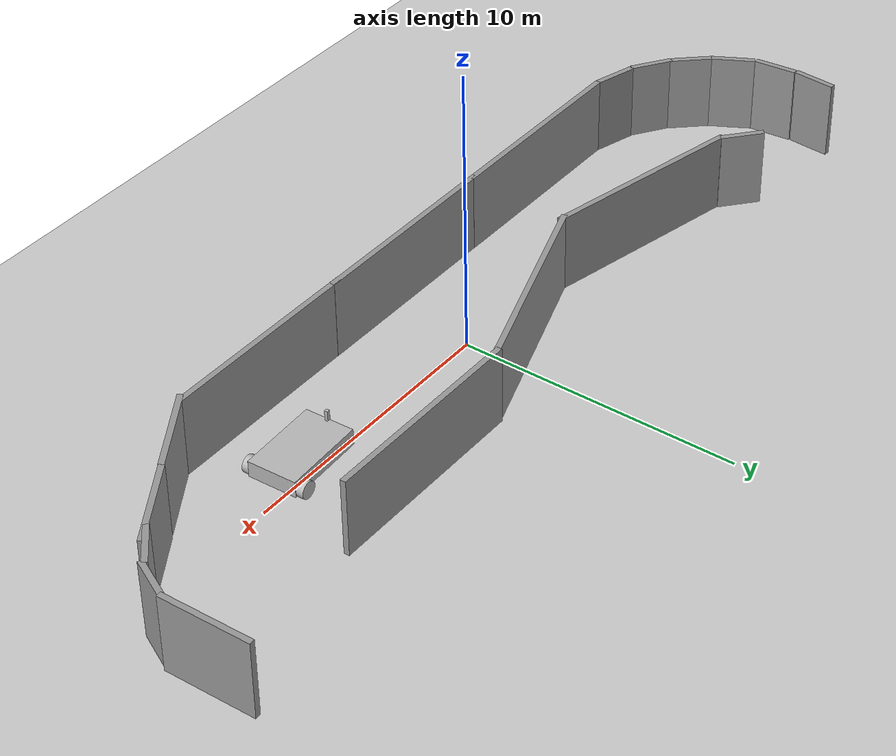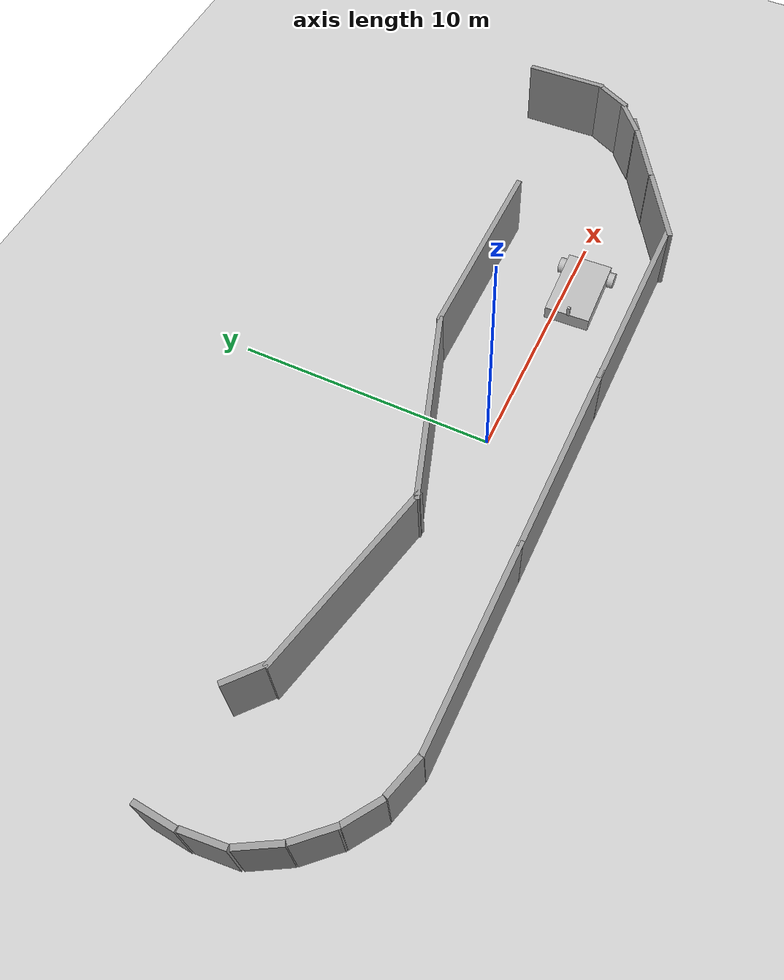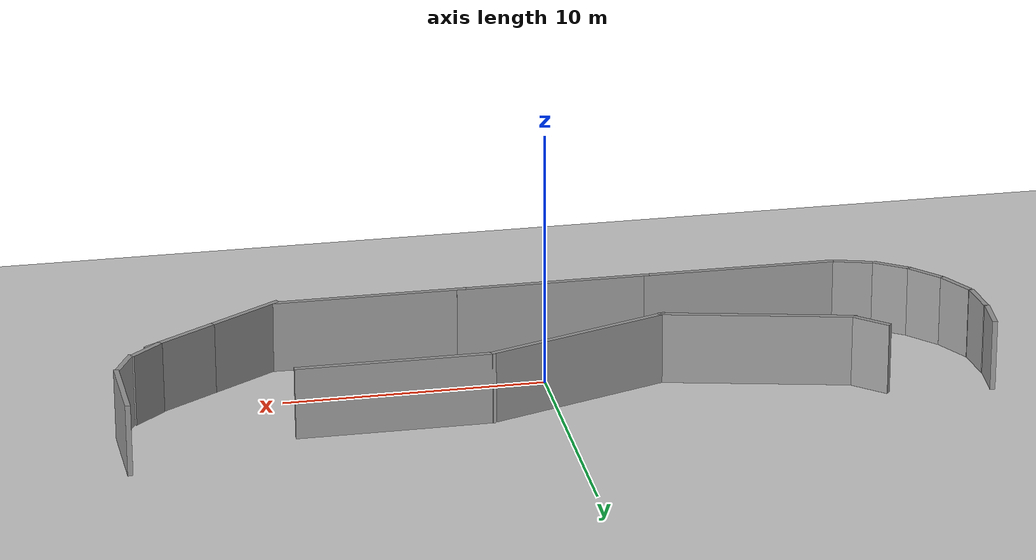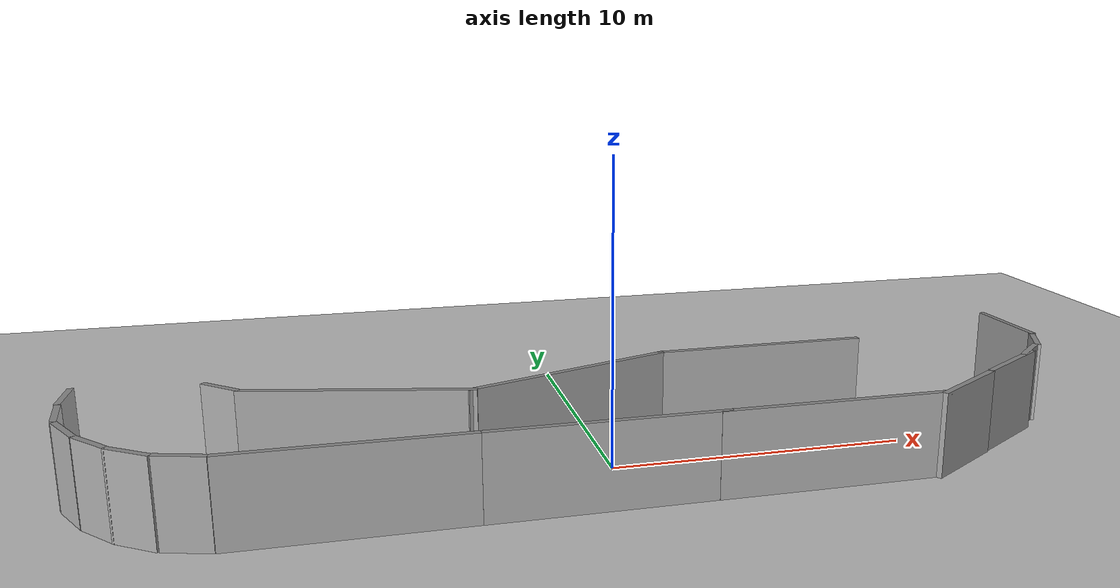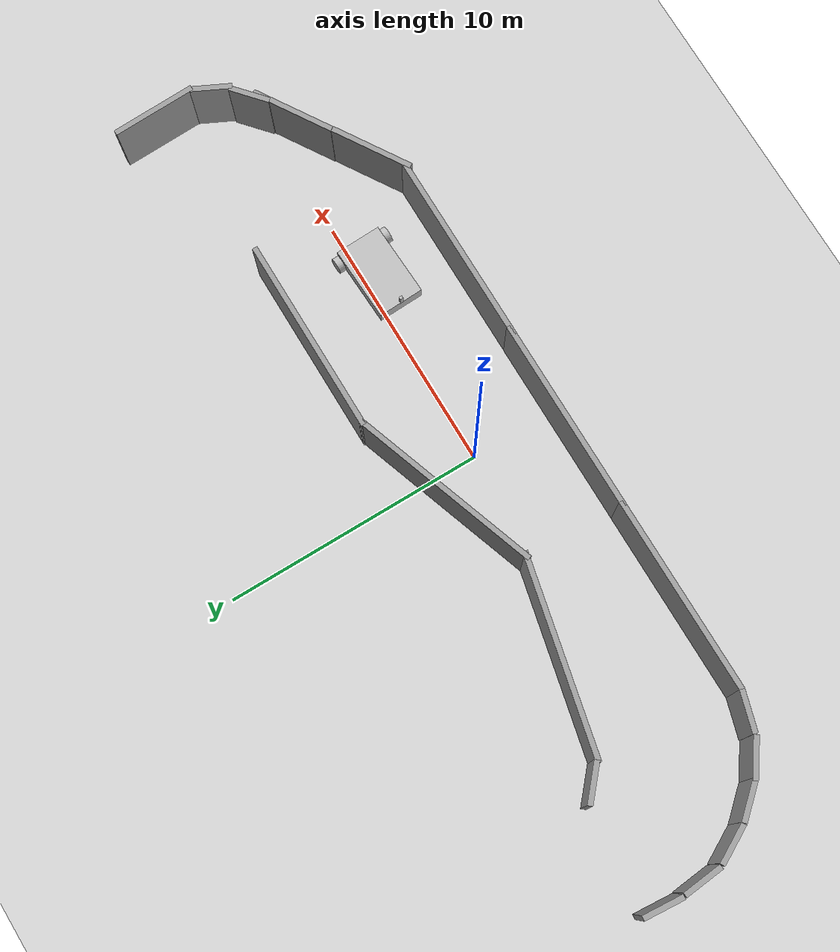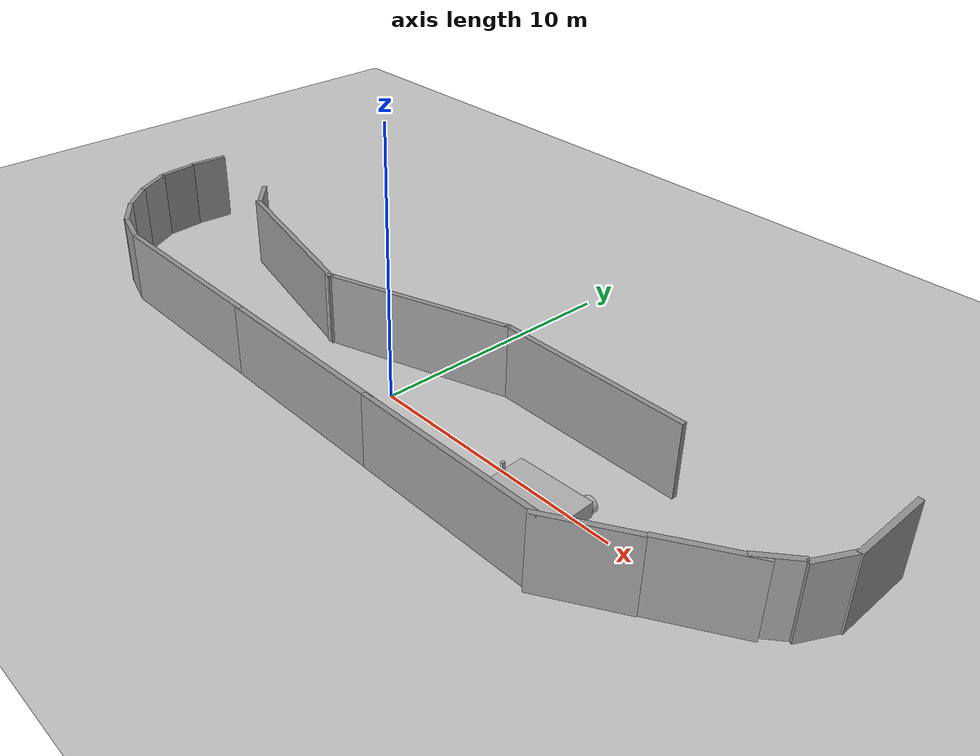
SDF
<sdf version="1.7">
 <world name="default">
  <model name="ground_plane">
   <static>1</static>
   <link name="link">
    <collision name="collision">
     <geometry><plane><normal>0 0 1</normal><size>100 100</size></plane></geometry>
     <surface>
      <contact><collide_bitmask>65535</collide_bitmask></contact>
      <friction><ode><mu>100</mu><mu2>50</mu2></ode></friction>
     </surface>
    </collision>
    <visual name="visual">
     <cast_shadows>0</cast_shadows>
     <geometry><plane><normal>0 0 1</normal><size>100 100</size></plane></geometry>
     <material>
      <script><uri>file://media/materials/scripts/gazebo.material</uri><name>Gazebo/Grey</name></script>
     </material>
    </visual>
   </link>
  </model>
  <model name="grey_wall">
   <static>1</static>
   <link name="link">
    <pose>0 0 1.4 0 -0 0</pose>
    <collision name="collision"><geometry><box><size>7.5 0.2 2.8</size></box></geometry></collision>
    <visual name="visual">
     <cast_shadows>0</cast_shadows>
     <geometry><box><size>7.5 0.2 2.8</size></box></geometry>
     <material>
      <script>
       <uri>model://grey_wall/materials/scripts</uri>
       <uri>model://grey_wall/materials/textures</uri>
       <name>vrc/grey_wall</name>
      </script>
     </material>
    </visual>
   </link>
   <pose>6.24047 -3.07553 0 0 -0 0</pose>
  </model>
  <model name="grey_wall_0">
   <static>1</static>
   <link name="link">
    <pose>0 0 1.4 0 -0 0</pose>
    <collision name="collision"><geometry><box><size>7.5 0.2 2.8</size></box></geometry></collision>
    <visual name="visual">
     <cast_shadows>0</cast_shadows>
     <geometry><box><size>7.5 0.2 2.8</size></box></geometry>
     <material>
      <script>
       <uri>model://grey_wall/materials/scripts</uri>
       <uri>model://grey_wall/materials/textures</uri>
       <name>vrc/grey_wall</name>
      </script>
     </material>
    </visual>
   </link>
   <pose>6.195 3.06427 0 0 -0 0</pose>
  </model>
  <model name="grey_wall_1">
   <static>1</static>
   <link name="link">
    <pose>0 0 1.4 0 -0 0</pose>
    <collision name="collision"><geometry><box><size>7.5 0.2 2.8</size></box></geometry></collision>
    <visual name="visual">
     <cast_shadows>0</cast_shadows>
     <geometry><box><size>7.5 0.2 2.8</size></box></geometry>
     <material>
      <script>
       <uri>model://grey_wall/materials/scripts</uri>
       <uri>model://grey_wall/materials/textures</uri>
       <name>vrc/grey_wall</name>
      </script>
     </material>
    </visual>
   </link>
   <pose>-0.883506 -3.06915 0 0 -0 0</pose>
  </model>
  <model name="grey_wall_2">
   <static>1</static>
   <link name="link">
    <pose>0 0 1.4 0 -0 0</pose>
    <collision name="collision"><geometry><box><size>7.5 0.2 2.8</size></box></geometry></collision>
    <visual name="visual">
     <cast_shadows>0</cast_shadows>
     <geometry><box><size>7.5 0.2 2.8</size></box></geometry>
     <material>
      <script>
       <uri>model://grey_wall/materials/scripts</uri>
       <uri>model://grey_wall/materials/textures</uri>
       <name>vrc/grey_wall</name>
      </script>
     </material>
    </visual>
   </link>
   <pose>-0.930243 1.86057 0 0 -0 0.330047</pose>
  </model>
  <model name="grey_wall_3">
   <static>1</static>
   <link name="link">
    <pose>0 0 1.4 0 -0 0</pose>
    <collision name="collision"><geometry><box><size>7.5 0.2 2.8</size></box></geometry></collision>
    <visual name="visual">
     <cast_shadows>0</cast_shadows>
     <geometry><box><size>7.5 0.2 2.8</size></box></geometry>
     <material>
      <script>
       <uri>model://grey_wall/materials/scripts</uri>
       <uri>model://grey_wall/materials/textures</uri>
       <name>vrc/grey_wall</name>
      </script>
     </material>
    </visual>
   </link>
   <pose>-8.16793 -3.06567 0 0 -0 0</pose>
  </model>
  <model name="grey_wall_4">
   <static>1</static>
   <link name="link">
    <pose>0 0 1.4 0 -0 0</pose>
    <collision name="collision"><geometry><box><size>7.5 0.2 2.8</size></box></geometry></collision>
    <visual name="visual">
     <cast_shadows>0</cast_shadows>
     <geometry><box><size>7.5 0.2 2.8</size></box></geometry>
     <material>
      <script>
       <uri>model://grey_wall/materials/scripts</uri>
       <uri>model://grey_wall/materials/textures</uri>
       <name>vrc/grey_wall</name>
      </script>
     </material>
    </visual>
   </link>
   <pose>-7.83293 1.48595 0 0 0 -0.222426</pose>
  </model>
  <model name="grey_wall_small">
   <link name="link">
    <pose>0 0 1.4 0 -0 0</pose>
    <inertial>
     <inertia><ixx>0</ixx><ixy>0</ixy><ixz>0</ixz><iyy>0</iyy><iyz>0</iyz><izz>0</izz></inertia>
     <mass>0</mass>
    </inertial>
    <visual name="visual">
     <cast_shadows>0</cast_shadows>
     <geometry><box><size>1.53178 0.2 2.8</size></box></geometry>
     <material>
      <script>
       <uri>model://grey_wall/materials/scripts</uri>
       <uri>model://grey_wall/materials/textures</uri>
       <name>vrc/grey_wall</name>
      </script>
      <shader type="pixel"/>
     </material>
    </visual>
    <collision name="collision">
     <geometry><box><size>1.53178 0.2 2.8</size></box></geometry>
     <surface>
      <friction>
       <ode><mu>1</mu><mu2>1</mu2><fdir1>0 0 0</fdir1><slip1>0</slip1><slip2>0</slip2></ode>
       <torsional>
        <coefficient>1</coefficient>
        <patch_radius>0</patch_radius>
        <surface_radius>0</surface_radius>
        <use_patch_radius>1</use_patch_radius>
        <ode><slip>0</slip></ode>
       </torsional>
      </friction>
      <bounce><restitution_coefficient>0</restitution_coefficient><threshold>1e+06</threshold></bounce>
      <contact>
       <collide_without_contact>0</collide_without_contact>
       <collide_without_contact_bitmask>1</collide_without_contact_bitmask>
       <collide_bitmask>1</collide_bitmask>
       <ode>
        <soft_cfm>0</soft_cfm>
        <soft_erp>0.2</soft_erp>
        <kp>1e+13</kp>
        <kd>1</kd>
        <max_vel>0.01</max_vel>
        <min_depth>0</min_depth>
       </ode>
       <bullet>
        <split_impulse>1</split_impulse>
        <split_impulse_penetration_threshold>-0.01</split_impulse_penetration_threshold>
        <soft_cfm>0</soft_cfm>
        <soft_erp>0.2</soft_erp>
        <kp>1e+13</kp>
        <kd>1</kd>
       </bullet>
      </contact>
     </surface>
    </collision>
   </link>
   <static>1</static>
   <pose>-12.6395 -2.84604 -0 0 0 -0.284404</pose>
  </model>
  <model name="grey_wall_small_clone">
   <link name="link">
    <pose>0 0 1.4 0 -0 0</pose>
    <inertial>
     <inertia><ixx>0</ixx><ixy>0</ixy><ixz>0</ixz><iyy>0</iyy><iyz>0</iyz><izz>0</izz></inertia>
     <mass>0</mass>
    </inertial>
    <visual name="visual">
     <cast_shadows>0</cast_shadows>
     <geometry><box><size>1.53178 0.2 2.8</size></box></geometry>
     <material>
      <script>
       <uri>model://grey_wall/materials/scripts</uri>
       <uri>model://grey_wall/materials/textures</uri>
       <name>vrc/grey_wall</name>
      </script>
      <shader type="pixel"/>
     </material>
    </visual>
    <collision name="collision">
     <geometry><box><size>1.53178 0.2 2.8</size></box></geometry>
     <surface>
      <friction>
       <ode><mu>1</mu><mu2>1</mu2><fdir1>0 0 0</fdir1><slip1>0</slip1><slip2>0</slip2></ode>
       <torsional>
        <coefficient>1</coefficient>
        <patch_radius>0</patch_radius>
        <surface_radius>0</surface_radius>
        <use_patch_radius>1</use_patch_radius>
        <ode><slip>0</slip></ode>
       </torsional>
      </friction>
      <bounce><restitution_coefficient>0</restitution_coefficient><threshold>1e+06</threshold></bounce>
      <contact>
       <collide_without_contact>0</collide_without_contact>
       <collide_without_contact_bitmask>1</collide_without_contact_bitmask>
       <collide_bitmask>1</collide_bitmask>
       <ode>
        <soft_cfm>0</soft_cfm>
        <soft_erp>0.2</soft_erp>
        <kp>1e+13</kp>
        <kd>1</kd>
        <max_vel>0.01</max_vel>
        <min_depth>0</min_depth>
       </ode>
       <bullet>
        <split_impulse>1</split_impulse>
        <split_impulse_penetration_threshold>-0.01</split_impulse_penetration_threshold>
        <soft_cfm>0</soft_cfm>
        <soft_erp>0.2</soft_erp>
        <kp>1e+13</kp>
        <kd>1</kd>
       </bullet>
      </contact>
     </surface>
    </collision>
   </link>
   <static>1</static>
   <pose>-11.9422 2.81874 0 0 0 -0.719521</pose>
  </model>
  <model name="grey_wall_small_0">
   <link name="link">
    <pose>0 0 1.4 0 -0 0</pose>
    <inertial>
     <inertia><ixx>0</ixx><ixy>0</ixy><ixz>0</ixz><iyy>0</iyy><iyz>0</iyz><izz>0</izz></inertia>
     <mass>0</mass>
    </inertial>
    <visual name="visual">
     <cast_shadows>0</cast_shadows>
     <geometry><box><size>1.53178 0.2 2.8</size></box></geometry>
     <material>
      <script>
       <uri>model://grey_wall/materials/scripts</uri>
       <uri>model://grey_wall/materials/textures</uri>
       <name>vrc/grey_wall</name>
      </script>
      <shader type="pixel"/>
     </material>
    </visual>
    <collision name="collision">
     <geometry><box><size>1.53178 0.2 2.8</size></box></geometry>
     <surface>
      <friction>
       <ode><mu>1</mu><mu2>1</mu2><fdir1>0 0 0</fdir1><slip1>0</slip1><slip2>0</slip2></ode>
       <torsional>
        <coefficient>1</coefficient>
        <patch_radius>0</patch_radius>
        <surface_radius>0</surface_radius>
        <use_patch_radius>1</use_patch_radius>
        <ode><slip>0</slip></ode>
       </torsional>
      </friction>
      <bounce><restitution_coefficient>0</restitution_coefficient><threshold>1e+06</threshold></bounce>
      <contact>
       <collide_without_contact>0</collide_without_contact>
       <collide_without_contact_bitmask>1</collide_without_contact_bitmask>
       <collide_bitmask>1</collide_bitmask>
       <ode>
        <soft_cfm>0</soft_cfm>
        <soft_erp>0.2</soft_erp>
        <kp>1e+13</kp>
        <kd>1</kd>
        <max_vel>0.01</max_vel>
        <min_depth>0</min_depth>
       </ode>
       <bullet>
        <split_impulse>1</split_impulse>
        <split_impulse_penetration_threshold>-0.01</split_impulse_penetration_threshold>
        <soft_cfm>0</soft_cfm>
        <soft_erp>0.2</soft_erp>
        <kp>1e+13</kp>
        <kd>1</kd>
       </bullet>
      </contact>
     </surface>
    </collision>
   </link>
   <static>1</static>
   <pose>-14.0325 -2.21425 0 0 0 -0.600476</pose>
  </model>
  <model name="grey_wall_small_1">
   <link name="link">
    <pose>0 0 1.4 0 -0 0</pose>
    <inertial>
     <inertia><ixx>0</ixx><ixy>0</ixy><ixz>0</ixz><iyy>0</iyy><iyz>0</iyz><izz>0</izz></inertia>
     <mass>0</mass>
    </inertial>
    <visual name="visual">
     <cast_shadows>0</cast_shadows>
     <geometry><box><size>1.53178 0.2 2.8</size></box></geometry>
     <material>
      <script>
       <uri>model://grey_wall/materials/scripts</uri>
       <uri>model://grey_wall/materials/textures</uri>
       <name>vrc/grey_wall</name>
      </script>
      <shader type="pixel"/>
     </material>
    </visual>
    <collision name="collision">
     <geometry><box><size>1.53178 0.2 2.8</size></box></geometry>
     <surface>
      <friction>
       <ode><mu>1</mu><mu2>1</mu2><fdir1>0 0 0</fdir1><slip1>0</slip1><slip2>0</slip2></ode>
       <torsional>
        <coefficient>1</coefficient>
        <patch_radius>0</patch_radius>
        <surface_radius>0</surface_radius>
        <use_patch_radius>1</use_patch_radius>
        <ode><slip>0</slip></ode>
       </torsional>
      </friction>
      <bounce><restitution_coefficient>0</restitution_coefficient><threshold>1e+06</threshold></bounce>
      <contact>
       <collide_without_contact>0</collide_without_contact>
       <collide_without_contact_bitmask>1</collide_without_contact_bitmask>
       <collide_bitmask>1</collide_bitmask>
       <ode>
        <soft_cfm>0</soft_cfm>
        <soft_erp>0.2</soft_erp>
        <kp>1e+13</kp>
        <kd>1</kd>
        <max_vel>0.01</max_vel>
        <min_depth>0</min_depth>
       </ode>
       <bullet>
        <split_impulse>1</split_impulse>
        <split_impulse_penetration_threshold>-0.01</split_impulse_penetration_threshold>
        <soft_cfm>0</soft_cfm>
        <soft_erp>0.2</soft_erp>
        <kp>1e+13</kp>
        <kd>1</kd>
       </bullet>
      </contact>
     </surface>
    </collision>
   </link>
   <static>1</static>
   <pose>-15.1007 -1.27585 0 0 0 -0.833322</pose>
  </model>
  <model name="grey_wall_small_2">
   <link name="link">
    <pose>0 0 1.4 0 -0 0</pose>
    <inertial>
     <inertia><ixx>0</ixx><ixy>0</ixy><ixz>0</ixz><iyy>0</iyy><iyz>0</iyz><izz>0</izz></inertia>
     <mass>0</mass>
    </inertial>
    <visual name="visual">
     <cast_shadows>0</cast_shadows>
     <geometry><box><size>1.53178 0.2 2.8</size></box></geometry>
     <material>
      <script>
       <uri>model://grey_wall/materials/scripts</uri>
       <uri>model://grey_wall/materials/textures</uri>
       <name>vrc/grey_wall</name>
      </script>
      <shader type="pixel"/>
     </material>
    </visual>
    <collision name="collision">
     <geometry><box><size>1.53178 0.2 2.8</size></box></geometry>
     <surface>
      <friction>
       <ode><mu>1</mu><mu2>1</mu2><fdir1>0 0 0</fdir1><slip1>0</slip1><slip2>0</slip2></ode>
       <torsional>
        <coefficient>1</coefficient>
        <patch_radius>0</patch_radius>
        <surface_radius>0</surface_radius>
        <use_patch_radius>1</use_patch_radius>
        <ode><slip>0</slip></ode>
       </torsional>
      </friction>
      <bounce><restitution_coefficient>0</restitution_coefficient><threshold>1e+06</threshold></bounce>
      <contact>
       <collide_without_contact>0</collide_without_contact>
       <collide_without_contact_bitmask>1</collide_without_contact_bitmask>
       <collide_bitmask>1</collide_bitmask>
       <ode>
        <soft_cfm>0</soft_cfm>
        <soft_erp>0.2</soft_erp>
        <kp>1e+13</kp>
        <kd>1</kd>
        <max_vel>0.01</max_vel>
        <min_depth>0</min_depth>
       </ode>
       <bullet>
        <split_impulse>1</split_impulse>
        <split_impulse_penetration_threshold>-0.01</split_impulse_penetration_threshold>
        <soft_cfm>0</soft_cfm>
        <soft_erp>0.2</soft_erp>
        <kp>1e+13</kp>
        <kd>1</kd>
       </bullet>
      </contact>
     </surface>
    </collision>
   </link>
   <static>1</static>
   <pose>-15.9987 -0.025805 0 0 0 -1.06472</pose>
  </model>
  <model name="grey_wall_small_3">
   <link name="link">
    <pose>0 0 1.4 0 -0 0</pose>
    <inertial>
     <inertia><ixx>0</ixx><ixy>0</ixy><ixz>0</ixz><iyy>0</iyy><iyz>0</iyz><izz>0</izz></inertia>
     <mass>0</mass>
    </inertial>
    <visual name="visual">
     <cast_shadows>0</cast_shadows>
     <geometry><box><size>1.53178 0.2 2.8</size></box></geometry>
     <material>
      <script>
       <uri>model://grey_wall/materials/scripts</uri>
       <uri>model://grey_wall/materials/textures</uri>
       <name>vrc/grey_wall</name>
      </script>
      <shader type="pixel"/>
     </material>
    </visual>
    <collision name="collision">
     <geometry><box><size>1.53178 0.2 2.8</size></box></geometry>
     <surface>
      <friction>
       <ode><mu>1</mu><mu2>1</mu2><fdir1>0 0 0</fdir1><slip1>0</slip1><slip2>0</slip2></ode>
       <torsional>
        <coefficient>1</coefficient>
        <patch_radius>0</patch_radius>
        <surface_radius>0</surface_radius>
        <use_patch_radius>1</use_patch_radius>
        <ode><slip>0</slip></ode>
       </torsional>
      </friction>
      <bounce><restitution_coefficient>0</restitution_coefficient><threshold>1e+06</threshold></bounce>
      <contact>
       <collide_without_contact>0</collide_without_contact>
       <collide_without_contact_bitmask>1</collide_without_contact_bitmask>
       <collide_bitmask>1</collide_bitmask>
       <ode>
        <soft_cfm>0</soft_cfm>
        <soft_erp>0.2</soft_erp>
        <kp>1e+13</kp>
        <kd>1</kd>
        <max_vel>0.01</max_vel>
        <min_depth>0</min_depth>
       </ode>
       <bullet>
        <split_impulse>1</split_impulse>
        <split_impulse_penetration_threshold>-0.01</split_impulse_penetration_threshold>
        <soft_cfm>0</soft_cfm>
        <soft_erp>0.2</soft_erp>
        <kp>1e+13</kp>
        <kd>1</kd>
       </bullet>
      </contact>
     </surface>
    </collision>
   </link>
   <static>1</static>
   <pose>-16.4715 1.44928 -0 0 0 -1.4736</pose>
  </model>
  <model name="grey_wall_small_5">
   <link name="link">
    <pose>0 0 1.4 0 -0 0</pose>
    <inertial>
     <inertia><ixx>0</ixx><ixy>0</ixy><ixz>0</ixz><iyy>0</iyy><iyz>0</iyz><izz>0</izz></inertia>
     <mass>0</mass>
    </inertial>
    <visual name="visual">
     <cast_shadows>0</cast_shadows>
     <geometry><box><size>1.53178 0.2 2.8</size></box></geometry>
     <material>
      <script>
       <uri>model://grey_wall/materials/scripts</uri>
       <uri>model://grey_wall/materials/textures</uri>
       <name>vrc/grey_wall</name>
      </script>
      <shader type="pixel"/>
     </material>
    </visual>
    <collision name="collision">
     <geometry><box><size>1.53178 0.2 2.8</size></box></geometry>
     <surface>
      <friction>
       <ode><mu>1</mu><mu2>1</mu2><fdir1>0 0 0</fdir1><slip1>0</slip1><slip2>0</slip2></ode>
       <torsional>
        <coefficient>1</coefficient>
        <patch_radius>0</patch_radius>
        <surface_radius>0</surface_radius>
        <use_patch_radius>1</use_patch_radius>
        <ode><slip>0</slip></ode>
       </torsional>
      </friction>
      <bounce><restitution_coefficient>0</restitution_coefficient><threshold>1e+06</threshold></bounce>
      <contact>
       <collide_without_contact>0</collide_without_contact>
       <collide_without_contact_bitmask>1</collide_without_contact_bitmask>
       <collide_bitmask>1</collide_bitmask>
       <ode>
        <soft_cfm>0</soft_cfm>
        <soft_erp>0.2</soft_erp>
        <kp>1e+13</kp>
        <kd>1</kd>
        <max_vel>0.01</max_vel>
        <min_depth>0</min_depth>
       </ode>
       <bullet>
        <split_impulse>1</split_impulse>
        <split_impulse_penetration_threshold>-0.01</split_impulse_penetration_threshold>
        <soft_cfm>0</soft_cfm>
        <soft_erp>0.2</soft_erp>
        <kp>1e+13</kp>
        <kd>1</kd>
       </bullet>
      </contact>
     </surface>
    </collision>
   </link>
   <static>1</static>
   <pose>-16.5119 3.01367 0 0 0 -1.64804</pose>
  </model>
  <model name="grey_wall_medium">
   <link name="link">
    <pose>0 -0 1.4 -0 -0 -0</pose>
    <inertial>
     <inertia><ixx>0</ixx><ixy>0</ixy><ixz>0</ixz><iyy>0</iyy><iyz>0</iyz><izz>0</izz></inertia>
     <mass>0</mass>
    </inertial>
    <visual name="visual">
     <cast_shadows>0</cast_shadows>
     <geometry><box><size>3.18298 0.2 2.8</size></box></geometry>
     <material>
      <script>
       <uri>model://grey_wall/materials/scripts</uri>
       <uri>model://grey_wall/materials/textures</uri>
       <name>vrc/grey_wall</name>
      </script>
      <shader type="pixel"/>
     </material>
    </visual>
    <collision name="collision">
     <geometry><box><size>3.18298 0.2 2.8</size></box></geometry>
     <surface>
      <friction>
       <ode><mu>1</mu><mu2>1</mu2><fdir1>0 0 0</fdir1><slip1>0</slip1><slip2>0</slip2></ode>
       <torsional>
        <coefficient>1</coefficient>
        <patch_radius>0</patch_radius>
        <surface_radius>0</surface_radius>
        <use_patch_radius>1</use_patch_radius>
        <ode><slip>0</slip></ode>
       </torsional>
      </friction>
      <bounce><restitution_coefficient>0</restitution_coefficient><threshold>1e+06</threshold></bounce>
      <contact>
       <collide_without_contact>0</collide_without_contact>
       <collide_without_contact_bitmask>1</collide_without_contact_bitmask>
       <collide_bitmask>1</collide_bitmask>
       <ode>
        <soft_cfm>0</soft_cfm>
        <soft_erp>0.2</soft_erp>
        <kp>1e+13</kp>
        <kd>1</kd>
        <max_vel>0.01</max_vel>
        <min_depth>0</min_depth>
       </ode>
       <bullet>
        <split_impulse>1</split_impulse>
        <split_impulse_penetration_threshold>-0.01</split_impulse_penetration_threshold>
        <soft_cfm>0</soft_cfm>
        <soft_erp>0.2</soft_erp>
        <kp>1e+13</kp>
        <kd>1</kd>
       </bullet>
      </contact>
     </surface>
    </collision>
   </link>
   <static>1</static>
   <pose>16.3164 3.53392 -0 0 -0.007518 -1.53946</pose>
  </model>
  <model name="grey_wall_medium_clone">
   <link name="link">
    <pose>0 -0 1.4 -0 -0 -0</pose>
    <inertial>
     <inertia><ixx>0</ixx><ixy>0</ixy><ixz>0</ixz><iyy>0</iyy><iyz>0</iyz><izz>0</izz></inertia>
     <mass>0</mass>
    </inertial>
    <visual name="visual">
     <cast_shadows>0</cast_shadows>
     <geometry><box><size>3.18298 0.2 2.8</size></box></geometry>
     <material>
      <script>
       <uri>model://grey_wall/materials/scripts</uri>
       <uri>model://grey_wall/materials/textures</uri>
       <name>vrc/grey_wall</name>
      </script>
      <shader type="pixel"/>
     </material>
    </visual>
    <collision name="collision">
     <geometry><box><size>3.18298 0.2 2.8</size></box></geometry>
     <surface>
      <friction>
       <ode><mu>1</mu><mu2>1</mu2><fdir1>0 0 0</fdir1><slip1>0</slip1><slip2>0</slip2></ode>
       <torsional>
        <coefficient>1</coefficient>
        <patch_radius>0</patch_radius>
        <surface_radius>0</surface_radius>
        <use_patch_radius>1</use_patch_radius>
        <ode><slip>0</slip></ode>
       </torsional>
      </friction>
      <bounce><restitution_coefficient>0</restitution_coefficient><threshold>1e+06</threshold></bounce>
      <contact>
       <collide_without_contact>0</collide_without_contact>
       <collide_without_contact_bitmask>1</collide_without_contact_bitmask>
       <collide_bitmask>1</collide_bitmask>
       <ode>
        <soft_cfm>0</soft_cfm>
        <soft_erp>0.2</soft_erp>
        <kp>1e+13</kp>
        <kd>1</kd>
        <max_vel>0.01</max_vel>
        <min_depth>0</min_depth>
       </ode>
       <bullet>
        <split_impulse>1</split_impulse>
        <split_impulse_penetration_threshold>-0.01</split_impulse_penetration_threshold>
        <soft_cfm>0</soft_cfm>
        <soft_erp>0.2</soft_erp>
        <kp>1e+13</kp>
        <kd>1</kd>
       </bullet>
      </contact>
     </surface>
    </collision>
   </link>
   <static>1</static>
   <pose>11.067 -2.40478 -0 0.0065 -0.003778 -2.58367</pose>
  </model>
  <model name="grey_wall_medium_clone_clone">
   <link name="link">
    <pose>0 -0 1.4 -0 -0 -0</pose>
    <inertial>
     <inertia><ixx>0</ixx><ixy>0</ixy><ixz>0</ixz><iyy>0</iyy><iyz>0</iyz><izz>0</izz></inertia>
     <mass>0</mass>
    </inertial>
    <visual name="visual">
     <cast_shadows>0</cast_shadows>
     <geometry><box><size>3.18298 0.2 2.8</size></box></geometry>
     <material>
      <script>
       <uri>model://grey_wall/materials/scripts</uri>
       <uri>model://grey_wall/materials/textures</uri>
       <name>vrc/grey_wall</name>
      </script>
      <shader type="pixel"/>
     </material>
    </visual>
    <collision name="collision">
     <geometry><box><size>3.18298 0.2 2.8</size></box></geometry>
     <surface>
      <friction>
       <ode><mu>1</mu><mu2>1</mu2><fdir1>0 0 0</fdir1><slip1>0</slip1><slip2>0</slip2></ode>
       <torsional>
        <coefficient>1</coefficient>
        <patch_radius>0</patch_radius>
        <surface_radius>0</surface_radius>
        <use_patch_radius>1</use_patch_radius>
        <ode><slip>0</slip></ode>
       </torsional>
      </friction>
      <bounce><restitution_coefficient>0</restitution_coefficient><threshold>1e+06</threshold></bounce>
      <contact>
       <collide_without_contact>0</collide_without_contact>
       <collide_without_contact_bitmask>1</collide_without_contact_bitmask>
       <collide_bitmask>1</collide_bitmask>
       <ode>
        <soft_cfm>0</soft_cfm>
        <soft_erp>0.2</soft_erp>
        <kp>1e+13</kp>
        <kd>1</kd>
        <max_vel>0.01</max_vel>
        <min_depth>0</min_depth>
       </ode>
       <bullet>
        <split_impulse>1</split_impulse>
        <split_impulse_penetration_threshold>-0.01</split_impulse_penetration_threshold>
        <soft_cfm>0</soft_cfm>
        <soft_erp>0.2</soft_erp>
        <kp>1e+13</kp>
        <kd>1</kd>
       </bullet>
      </contact>
     </surface>
    </collision>
   </link>
   <static>1</static>
   <pose>13.7374 -0.716196 -0 0.0065 -0.003778 -2.58367</pose>
  </model>
  <model name="grey_wall_small_13">
   <link name="link">
    <pose>0 0 1.4 0 -0 0</pose>
    <inertial>
     <inertia><ixx>0</ixx><ixy>0</ixy><ixz>0</ixz><iyy>0</iyy><iyz>0</iyz><izz>0</izz></inertia>
     <mass>0</mass>
    </inertial>
    <visual name="visual">
     <cast_shadows>0</cast_shadows>
     <geometry><box><size>1.53178 0.2 2.8</size></box></geometry>
     <material>
      <script>
       <uri>model://grey_wall/materials/scripts</uri>
       <uri>model://grey_wall/materials/textures</uri>
       <name>vrc/grey_wall</name>
      </script>
      <shader type="pixel"/>
     </material>
    </visual>
    <collision name="collision">
     <geometry><box><size>1.53178 0.2 2.8</size></box></geometry>
     <surface>
      <friction>
       <ode><mu>1</mu><mu2>1</mu2><fdir1>0 0 0</fdir1><slip1>0</slip1><slip2>0</slip2></ode>
       <torsional>
        <coefficient>1</coefficient>
        <patch_radius>0</patch_radius>
        <surface_radius>0</surface_radius>
        <use_patch_radius>1</use_patch_radius>
        <ode><slip>0</slip></ode>
       </torsional>
      </friction>
      <bounce><restitution_coefficient>0</restitution_coefficient><threshold>1e+06</threshold></bounce>
      <contact>
       <collide_without_contact>0</collide_without_contact>
       <collide_without_contact_bitmask>1</collide_without_contact_bitmask>
       <collide_bitmask>1</collide_bitmask>
       <ode>
        <soft_cfm>0</soft_cfm>
        <soft_erp>0.2</soft_erp>
        <kp>1e+13</kp>
        <kd>1</kd>
        <max_vel>0.01</max_vel>
        <min_depth>0</min_depth>
       </ode>
       <bullet>
        <split_impulse>1</split_impulse>
        <split_impulse_penetration_threshold>-0.01</split_impulse_penetration_threshold>
        <soft_cfm>0</soft_cfm>
        <soft_erp>0.2</soft_erp>
        <kp>1e+13</kp>
        <kd>1</kd>
       </bullet>
      </contact>
     </surface>
    </collision>
   </link>
   <static>1</static>
   <pose>16.0165 1.37588 -0 0 -0 1.11487</pose>
  </model>
  <model name="grey_wall_small_14">
   <link name="link">
    <pose>0 0 1.4 0 -0 0</pose>
    <inertial>
     <inertia><ixx>0</ixx><ixy>0</ixy><ixz>0</ixz><iyy>0</iyy><iyz>0</iyz><izz>0</izz></inertia>
     <mass>0</mass>
    </inertial>
    <visual name="visual">
     <cast_shadows>0</cast_shadows>
     <geometry><box><size>1.53178 0.2 2.8</size></box></geometry>
     <material>
      <script>
       <uri>model://grey_wall/materials/scripts</uri>
       <uri>model://grey_wall/materials/textures</uri>
       <name>vrc/grey_wall</name>
      </script>
      <shader type="pixel"/>
     </material>
    </visual>
    <collision name="collision">
     <geometry><box><size>1.53178 0.2 2.8</size></box></geometry>
     <surface>
      <friction>
       <ode><mu>1</mu><mu2>1</mu2><fdir1>0 0 0</fdir1><slip1>0</slip1><slip2>0</slip2></ode>
       <torsional>
        <coefficient>1</coefficient>
        <patch_radius>0</patch_radius>
        <surface_radius>0</surface_radius>
        <use_patch_radius>1</use_patch_radius>
        <ode><slip>0</slip></ode>
       </torsional>
      </friction>
      <bounce><restitution_coefficient>0</restitution_coefficient><threshold>1e+06</threshold></bounce>
      <contact>
       <collide_without_contact>0</collide_without_contact>
       <collide_without_contact_bitmask>1</collide_without_contact_bitmask>
       <collide_bitmask>1</collide_bitmask>
       <ode>
        <soft_cfm>0</soft_cfm>
        <soft_erp>0.2</soft_erp>
        <kp>1e+13</kp>
        <kd>1</kd>
        <max_vel>0.01</max_vel>
        <min_depth>0</min_depth>
       </ode>
       <bullet>
        <split_impulse>1</split_impulse>
        <split_impulse_penetration_threshold>-0.01</split_impulse_penetration_threshold>
        <soft_cfm>0</soft_cfm>
        <soft_erp>0.2</soft_erp>
        <kp>1e+13</kp>
        <kd>1</kd>
       </bullet>
      </contact>
     </surface>
    </collision>
   </link>
   <static>1</static>
   <pose>15.0828 0.310917 0 0 -0 0.71303</pose>
  </model>
  <model name="rugbot2">
   <link name="Root_link">
    <inertial>
     <pose>-0.250972 -1.6e-05 -0.049907 0 -0 0</pose>
     <mass>3.99272</mass>
     <inertia>
      <ixx>0.991134</ixx>
      <ixy>0</ixy>
      <ixz>0</ixz>
      <iyy>3.04884</iyy>
      <iyz>3.427e-05</iyz>
      <izz>3.70729</izz>
     </inertia>
    </inertial>
    <sensor name="laser1" type="ray">
     <visualize>1</visualize>
     <update_rate>10</update_rate>
     <ray>
      <scan>
       <horizontal>
        <samples>3</samples>
        <min_angle>1.5708</min_angle>
        <max_angle>-1.5708</max_angle>
        <resolution>1</resolution>
       </horizontal>
       <vertical><samples>1</samples><min_angle>0</min_angle><max_angle>0</max_angle></vertical>
      </scan>
      <range><min>0.3</min><max>12</max></range>
     </ray>
     <plugin name="gazebo_ros_head_hokuyo_controller" filename="libgazebo_ros_laser.so">
      <topicName>laser/scan</topicName>
      <frameName>laser</frameName>
      <robotNamespace>/</robotNamespace>
     </plugin>
     <pose>-1.32626 -0.04215 0.47358 0 -0 3.14</pose>
    </sensor>
    <visual name="Root_link_fixed_joint_lump__Diff_Bot__visual1_visual">
     <pose>-1 0 -0.2 0 -0 0</pose>
     <geometry><sphere><radius>0.2</radius></sphere></geometry>
     <material><shader type="pixel"><normal_map>__default__</normal_map></shader></material>
    </visual>
    <visual name="Root_link_fixed_joint_lump__rugbot.sdf__visual_visual_1">
     <pose>-1.32626 -0.04215 0.47358 0 -0 3.14</pose>
     <geometry><box><size>0.111563 0.119301 0.416724</size></box></geometry>
     <material><shader type="pixel"><normal_map>__default__</normal_map></shader></material>
    </visual>
    <visual name="Root_link_fixed_joint_lump__Diff_Bot__visual_visual_2">
     <pose>0.06283 -0.00211 0.02162 0 -0 0</pose>
     <geometry><box><size>2.88957 1.76304 0.587159</size></box></geometry>
     <material><shader type="pixel"><normal_map>__default__</normal_map></shader></material>
    </visual>
    <collision name="Root_link_fixed_joint_lump__Diff_Bot__collision_collision">
     <pose>-1 0 -0.2 0 -0 0</pose>
     <geometry><sphere><radius>0.2</radius></sphere></geometry>
     <surface>
      <friction>
       <ode><mu>3.46945e-18</mu><mu2>0</mu2><fdir1>0 0 0</fdir1><slip1>0</slip1><slip2>0</slip2></ode>
       <torsional>
        <coefficient>1</coefficient>
        <patch_radius>0</patch_radius>
        <surface_radius>0</surface_radius>
        <use_patch_radius>1</use_patch_radius>
        <ode><slip>0</slip></ode>
       </torsional>
      </friction>
      <bounce><restitution_coefficient>0</restitution_coefficient><threshold>1e+06</threshold></bounce>
      <contact>
       <collide_without_contact>0</collide_without_contact>
       <collide_without_contact_bitmask>1</collide_without_contact_bitmask>
       <collide_bitmask>1</collide_bitmask>
       <ode>
        <soft_cfm>0</soft_cfm>
        <soft_erp>0.2</soft_erp>
        <kp>1e+13</kp>
        <kd>1</kd>
        <max_vel>0.01</max_vel>
        <min_depth>0</min_depth>
       </ode>
       <bullet>
        <split_impulse>1</split_impulse>
        <split_impulse_penetration_threshold>-0.01</split_impulse_penetration_threshold>
        <soft_cfm>0</soft_cfm>
        <soft_erp>0.2</soft_erp>
        <kp>1e+13</kp>
        <kd>1</kd>
       </bullet>
      </contact>
     </surface>
    </collision>
    <collision name="Root_link_fixed_joint_lump__rugbot.sdf__collision_collision_1">
     <pose>-1.32626 -0.04215 0.47358 0 -0 3.14</pose>
     <geometry><box><size>0.111563 0.119301 0.416724</size></box></geometry>
     <surface>
      <friction>
       <ode><mu>1</mu><mu2>1</mu2><fdir1>0 0 0</fdir1><slip1>0</slip1><slip2>0</slip2></ode>
       <torsional>
        <coefficient>1</coefficient>
        <patch_radius>0</patch_radius>
        <surface_radius>0</surface_radius>
        <use_patch_radius>1</use_patch_radius>
        <ode><slip>0</slip></ode>
       </torsional>
      </friction>
      <bounce><restitution_coefficient>0</restitution_coefficient><threshold>1e+06</threshold></bounce>
      <contact>
       <collide_without_contact>0</collide_without_contact>
       <collide_without_contact_bitmask>1</collide_without_contact_bitmask>
       <collide_bitmask>1</collide_bitmask>
       <ode>
        <soft_cfm>0</soft_cfm>
        <soft_erp>0.2</soft_erp>
        <kp>1e+13</kp>
        <kd>1</kd>
        <max_vel>0.01</max_vel>
        <min_depth>0</min_depth>
       </ode>
       <bullet>
        <split_impulse>1</split_impulse>
        <split_impulse_penetration_threshold>-0.01</split_impulse_penetration_threshold>
        <soft_cfm>0</soft_cfm>
        <soft_erp>0.2</soft_erp>
        <kp>1e+13</kp>
        <kd>1</kd>
       </bullet>
      </contact>
     </surface>
    </collision>
    <collision name="Root_link_fixed_joint_lump__Diff_Bot__collision_collision_2">
     <pose>0.06283 -0.00211 0.02162 0 -0 0</pose>
     <geometry><box><size>2.88957 1.76304 0.587159</size></box></geometry>
     <surface>
      <friction>
       <ode><mu>1</mu><mu2>1</mu2><fdir1>0 0 0</fdir1><slip1>0</slip1><slip2>0</slip2></ode>
       <torsional>
        <coefficient>1</coefficient>
        <patch_radius>0</patch_radius>
        <surface_radius>0</surface_radius>
        <use_patch_radius>1</use_patch_radius>
        <ode><slip>0</slip></ode>
       </torsional>
      </friction>
      <bounce><restitution_coefficient>0</restitution_coefficient><threshold>1e+06</threshold></bounce>
      <contact>
       <collide_without_contact>0</collide_without_contact>
       <collide_without_contact_bitmask>1</collide_without_contact_bitmask>
       <collide_bitmask>1</collide_bitmask>
       <ode>
        <soft_cfm>0</soft_cfm>
        <soft_erp>0.2</soft_erp>
        <kp>1e+13</kp>
        <kd>1</kd>
        <max_vel>0.01</max_vel>
        <min_depth>0</min_depth>
       </ode>
       <bullet>
        <split_impulse>1</split_impulse>
        <split_impulse_penetration_threshold>-0.01</split_impulse_penetration_threshold>
        <soft_cfm>0</soft_cfm>
        <soft_erp>0.2</soft_erp>
        <kp>1e+13</kp>
        <kd>1</kd>
       </bullet>
      </contact>
     </surface>
    </collision>
   </link>
   <link name="Diff_Bot__link_1">
    <pose>1.20761 1.01943 -0.07838 1.5707 -0 0</pose>
    <inertial>
     <mass>1</mass>
     <inertia><ixx>0.145833</ixx><ixy>0</ixy><ixz>0</ixz><iyy>0.145833</iyy><iyz>0</iyz><izz>0.125</izz></inertia>
    </inertial>
    <visual name="Diff_Bot__link_1_fixed_joint_lump__Diff_Bot__visual_visual">
     <geometry><cylinder><length>0.25</length><radius>0.3</radius></cylinder></geometry>
     <material><shader type="pixel"><normal_map>__default__</normal_map></shader></material>
    </visual>
    <collision name="Diff_Bot__link_1_fixed_joint_lump__Diff_Bot__collision_collision">
     <geometry><cylinder><radius>0.3</radius><length>0.25</length></cylinder></geometry>
     <surface>
      <friction>
       <ode><mu>100</mu><mu2>100</mu2><fdir1>0 0 0</fdir1><slip1>0</slip1><slip2>0</slip2></ode>
       <torsional>
        <coefficient>1</coefficient>
        <patch_radius>0</patch_radius>
        <surface_radius>0</surface_radius>
        <use_patch_radius>1</use_patch_radius>
        <ode><slip>0</slip></ode>
       </torsional>
      </friction>
      <bounce><restitution_coefficient>0</restitution_coefficient><threshold>1e+06</threshold></bounce>
      <contact>
       <collide_without_contact>0</collide_without_contact>
       <collide_without_contact_bitmask>1</collide_without_contact_bitmask>
       <collide_bitmask>1</collide_bitmask>
       <ode>
        <soft_cfm>0</soft_cfm>
        <soft_erp>0.2</soft_erp>
        <kp>1e+13</kp>
        <kd>1</kd>
        <max_vel>0.01</max_vel>
        <min_depth>0</min_depth>
       </ode>
       <bullet>
        <split_impulse>1</split_impulse>
        <split_impulse_penetration_threshold>-0.01</split_impulse_penetration_threshold>
        <soft_cfm>0</soft_cfm>
        <soft_erp>0.2</soft_erp>
        <kp>1e+13</kp>
        <kd>1</kd>
       </bullet>
      </contact>
     </surface>
    </collision>
   </link>
   <link name="Diff_Bot__link_1_clone">
    <pose>1.20761 -1.00867 -0.07838 1.5707 -0 0</pose>
    <inertial>
     <mass>1</mass>
     <inertia><ixx>0.145833</ixx><ixy>0</ixy><ixz>0</ixz><iyy>0.145833</iyy><iyz>0</iyz><izz>0.125</izz></inertia>
    </inertial>
    <visual name="Diff_Bot__link_1_clone_fixed_joint_lump__Diff_Bot__visual_visual">
     <geometry><cylinder><length>0.25</length><radius>0.3</radius></cylinder></geometry>
     <material><shader type="pixel"><normal_map>__default__</normal_map></shader></material>
    </visual>
    <collision name="Diff_Bot__link_1_clone_fixed_joint_lump__Diff_Bot__collision_collision">
     <geometry><cylinder><radius>0.3</radius><length>0.25</length></cylinder></geometry>
     <surface>
      <friction>
       <ode><mu>100</mu><mu2>100</mu2><fdir1>0 0 0</fdir1><slip1>0</slip1><slip2>0</slip2></ode>
       <torsional>
        <coefficient>1</coefficient>
        <patch_radius>0</patch_radius>
        <surface_radius>0</surface_radius>
        <use_patch_radius>1</use_patch_radius>
        <ode><slip>0</slip></ode>
       </torsional>
      </friction>
      <bounce><restitution_coefficient>0</restitution_coefficient><threshold>1e+06</threshold></bounce>
      <contact>
       <collide_without_contact>0</collide_without_contact>
       <collide_without_contact_bitmask>1</collide_without_contact_bitmask>
       <collide_bitmask>1</collide_bitmask>
       <ode>
        <soft_cfm>0</soft_cfm>
        <soft_erp>0.2</soft_erp>
        <kp>1e+13</kp>
        <kd>1</kd>
        <max_vel>0.01</max_vel>
        <min_depth>0</min_depth>
       </ode>
       <bullet>
        <split_impulse>1</split_impulse>
        <split_impulse_penetration_threshold>-0.01</split_impulse_penetration_threshold>
        <soft_cfm>0</soft_cfm>
        <soft_erp>0.2</soft_erp>
        <kp>1e+13</kp>
        <kd>1</kd>
       </bullet>
      </contact>
     </surface>
    </collision>
   </link>
   <joint name="Diff_Bot__link_0_JOINT_1" type="revolute">
    <parent>Root_link</parent>
    <child>Diff_Bot__link_1</child>
    <axis>
     <xyz>0 0 1</xyz>
     <limit><lower>-1e+16</lower><upper>1e+16</upper><effort>-1</effort><velocity>-1</velocity></limit>
     <dynamics>
      <spring_reference>0</spring_reference>
      <spring_stiffness>0</spring_stiffness>
      <damping>0</damping>
      <friction>0</friction>
     </dynamics>
    </axis>
    <physics>
     <ode><limit><cfm>0</cfm><erp>0.2</erp></limit><suspension><cfm>0</cfm><erp>0.2</erp></suspension></ode>
    </physics>
   </joint>
   <joint name="Diff_Bot__link_0_JOINT_2" type="revolute">
    <parent>Root_link</parent>
    <child>Diff_Bot__link_1_clone</child>
    <axis>
     <xyz>0 0 1</xyz>
     <limit><lower>-1e+16</lower><upper>1e+16</upper><effort>-1</effort><velocity>-1</velocity></limit>
     <dynamics>
      <spring_reference>0</spring_reference>
      <spring_stiffness>0</spring_stiffness>
      <damping>0</damping>
      <friction>0</friction>
     </dynamics>
    </axis>
    <physics>
     <ode><limit><cfm>0</cfm><erp>0.2</erp></limit><suspension><cfm>0</cfm><erp>0.2</erp></suspension></ode>
    </physics>
   </joint>
   <static>0</static>
   <plugin name="differential_drive_controller" filename="libgazebo_ros_diff_drive.so">
    <updateRate>100</updateRate>
    <leftJoint>Diff_Bot__link_0_JOINT_2</leftJoint>
    <rightJoint>Diff_Bot__link_0_JOINT_1</rightJoint>
    <wheelSeparation>2.01304</wheelSeparation>
    <wheelDiameter>0.6</wheelDiameter>
    <wheelAcceleration>0</wheelAcceleration>
    <wheelTorque>20</wheelTorque>
    <commandTopic>cmd_vel</commandTopic>
    <odometryTopic>odom</odometryTopic>
    <odometryFrame>odom</odometryFrame>
    <robotBaseFrame>base_footprint</robotBaseFrame>
    <odometrySource>1</odometrySource>
    <publishWheelTF>1</publishWheelTF>
    <publishOdom>1</publishOdom>
    <publishWheelJointState>1</publishWheelJointState>
    <legacyMode>0</legacyMode>
    <robotNamespace>/</robotNamespace>
   </plugin>
   <pose>7.51676 -0.560226 0.390205 0.00113 0.00972 0.041134</pose>
  </model>
 </world>
</sdf>
